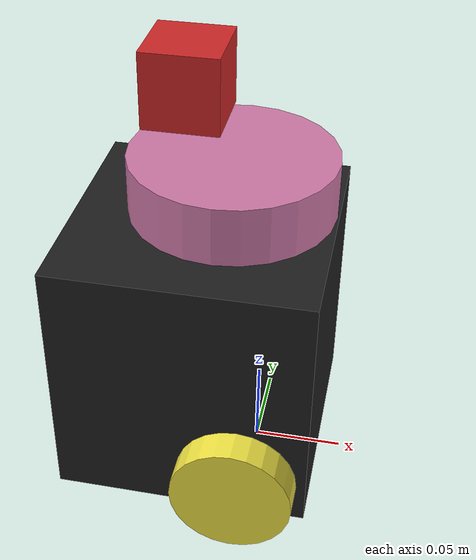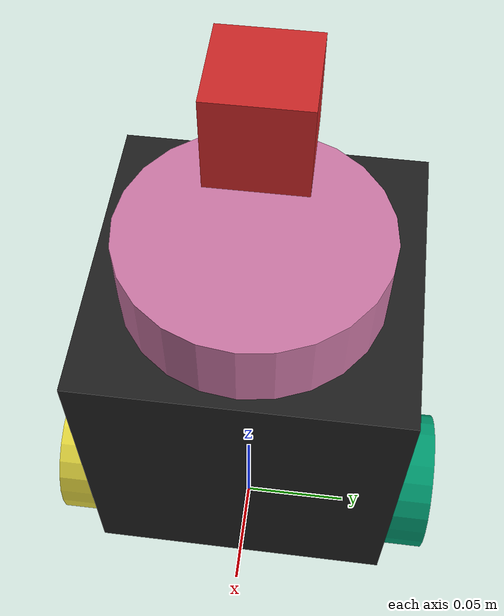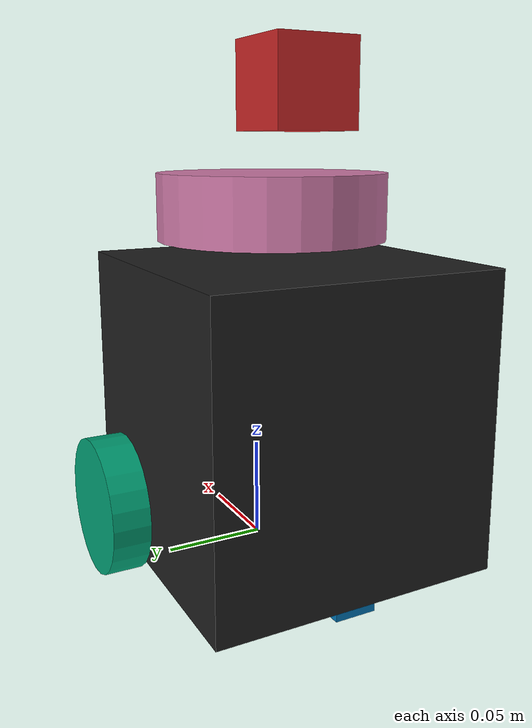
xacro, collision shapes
<?xml version="1.0" ?>
<robot name="turtlebot3_burger" xmlns:xacro="http://ros.org/wiki/xacro">
  <xacro:include filename="$(find turtlebot3_description)/urdf/common_properties.xacro"/>
  <xacro:include filename="$(find turtlebot3_description)/urdf/turtlebot3_burger.gazebo.xacro"/>

  <link name="base_footprint"/>

  <joint name="base_joint" type="fixed">
    <parent link="base_footprint"/>
    <child link="base_link"/>
    <origin xyz="0.0 0.0 0.010" rpy="0 0 0"/>
  </joint>

  <link name="base_link">
    <visual>
      <origin xyz="-0.032 0 0.0" rpy="0 0 0"/>
      <geometry>
        <mesh filename="package://turtlebot3_description/meshes/bases/burger_base.stl" scale="0.001 0.001 0.001"/>
      </geometry>
      <material name="light_black"/>
    </visual>

    <collision>
      <origin xyz="-0.032 0 0.070" rpy="0 0 0"/>
      <geometry>
        <box size="0.140 0.140 0.143"/>
      </geometry>
    </collision>

    <inertial>
      <origin xyz="0 0 0" rpy="0 0 0"/>
      <mass value="8.2573504e-01"/>
      <inertia ixx="2.2124416e-03" ixy="-1.2294101e-05" ixz="3.4938785e-05"
               iyy="2.1193702e-03" iyz="-5.0120904e-06"
               izz="2.0064271e-03" />
    </inertial>
  </link>

  <joint name="wheel_left_joint" type="continuous">
    <parent link="base_link"/>
    <child link="wheel_left_link"/>
    <origin xyz="0.0 0.08 0.023" rpy="-1.57 0 0"/>
    <axis xyz="0 0 1"/>
  </joint>

  <link name="wheel_left_link">
    <visual>
      <origin xyz="0 0 0" rpy="1.57 0 0"/>
      <geometry>
        <mesh filename="package://turtlebot3_description/meshes/wheels/left_tire.stl" scale="0.001 0.001 0.001"/>
      </geometry>
      <material name="dark"/>
    </visual>

    <collision>
      <origin xyz="0 0 0" rpy="0 0 0"/>
      <geometry>
        <cylinder length="0.018" radius="0.033"/>
      </geometry>
    </collision>

    <inertial>
      <origin xyz="0 0 0" />
      <mass value="2.8498940e-02" />
      <inertia ixx="1.1175580e-05" ixy="-4.2369783e-11" ixz="-5.9381719e-09"
               iyy="1.1192413e-05" iyz="-1.4400107e-11"
               izz="2.0712558e-05" />
      </inertial>
  </link>

  <joint name="wheel_right_joint" type="continuous">
    <parent link="base_link"/>
    <child link="wheel_right_link"/>
    <origin xyz="0.0 -0.080 0.023" rpy="-1.57 0 0"/>
    <axis xyz="0 0 1"/>
  </joint>

  <link name="wheel_right_link">
    <visual>
      <origin xyz="0 0 0" rpy="1.57 0 0"/>
      <geometry>
        <mesh filename="package://turtlebot3_description/meshes/wheels/right_tire.stl" scale="0.001 0.001 0.001"/>
      </geometry>
      <material name="dark"/>
    </visual>

    <collision>
      <origin xyz="0 0 0" rpy="0 0 0"/>
      <geometry>
        <cylinder length="0.018" radius="0.033"/>
      </geometry>
    </collision>

    <inertial>
      <origin xyz="0 0 0" />
      <mass value="2.8498940e-02" />
      <inertia ixx="1.1175580e-05" ixy="-4.2369783e-11" ixz="-5.9381719e-09"
               iyy="1.1192413e-05" iyz="-1.4400107e-11"
               izz="2.0712558e-05" />
      </inertial>
  </link>

  <joint name="caster_back_joint" type="fixed">
    <parent link="base_link"/>
    <child link="caster_back_link"/>
    <origin xyz="-0.081 0 -0.004" rpy="-1.57 0 0"/>
  </joint>

  <link name="caster_back_link">
    <collision>
      <origin xyz="0 0.001 0" rpy="0 0 0"/>
      <geometry>
        <box size="0.030 0.009 0.020"/>
      </geometry>
    </collision>

    <inertial>
      <origin xyz="0 0 0" />
      <mass value="0.005" />
      <inertia ixx="0.001" ixy="0.0" ixz="0.0"
               iyy="0.001" iyz="0.0"
               izz="0.001" />
    </inertial>
  </link>

  <joint name="imu_joint" type="fixed">
    <parent link="base_link"/>
    <child link="imu_link"/>
    <origin xyz="-0.032 0 0.068" rpy="0 0 0"/>
  </joint>

  <link name="imu_link"/>

  <joint name="scan_joint" type="fixed">
    <parent link="base_link"/>
    <child link="base_scan"/>
    <origin xyz="-0.032 0 0.172" rpy="0 0 0"/>
  </joint>

  <link name="base_scan">
    <visual>
      <origin xyz="0 0 0.0" rpy="0 0 0"/>
      <geometry>
        <mesh filename="package://turtlebot3_description/meshes/sensors/lds.stl" scale="0.001 0.001 0.001"/>
      </geometry>
      <material name="dark"/>
    </visual>

    <collision>
      <origin xyz="0.015 0 -0.0065" rpy="0 0 0"/>
      <geometry>
        <cylinder length="0.0315" radius="0.055"/>
      </geometry>
    </collision>

    <inertial>
      <mass value="0.114" />
      <origin xyz="0 0 0" />
      <inertia ixx="0.001" ixy="0.0" ixz="0.0"
               iyy="0.001" iyz="0.0"
               izz="0.001" />
    </inertial>
  </link>

   <!-- joint Chassis-Camera -->
   <joint name="camera_joint" type="fixed">
      <origin xyz="-0.04 0 0.22" rpy="0 0 0"/>
      <parent link="base_link"/>
      <child link="camera_link"/>
   </joint>

   <!-- Chassis-Camera -->
   <link name="camera_link">
      <collision>
         <origin xyz="0 0 0" rpy="0 0 0"/>
         <geometry>
            <box size="0.04 0.04 0.04"/>
         </geometry>
      </collision>
      <visual>
         <origin xyz="0 0 0" rpy="0 0 0"/>
        <geometry>
          <mesh filename="package://zedbot_description/meshes/zed_models/zed2.stl" />
        </geometry>
        <material name="red"/>
      </visual>
      <inertial>
         <mass value="1e-5" />
         <origin xyz="0 0 0" rpy="0 0 0"/>
         <inertia ixx="1e-6" ixy="0" ixz="0" iyy="1e-6" iyz="0" izz="1e-6" />
      </inertial>
   </link>
   <xacro:property name="camera_link" value="0.4" /> <!--size of 'camera' box-->

	<!-- generate an optical frame
      http://www.ros.org/reps/rep-0103.html#suffix-frames
      so that ros and opencv can operate on the camera frame correctly
      -->
  <joint name="camera_optical_joint" type="fixed">
    <!-- these values have to be these values otherwise the gazebo camera
        image won't be aligned properly with the frame it is supposedly
        originating from -->
    <origin xyz="0 0 0" rpy="-1.57 0 -1.57"/>
    <parent link="camera_link"/>
    <child link="camera_link_optical"/>
  </joint>

  <link name="camera_link_optical">
  </link>

  <!-- camera -->
  <gazebo reference="camera_link">
    <sensor name="depth_camera" type="depth">
      <update_rate>20.0</update_rate>
      <camera>
        <horizontal_fov>1.047198</horizontal_fov>
        <image>
          <width>96</width>
          <height>72</height>
          <format>R8G8B8</format>
        </image>
        <clip>
          <near>0.05</near>
          <far>5</far>
        </clip>
      </camera>
      <plugin name="depth_camera_controller" filename="libgazebo_ros_openni_kinect.so">
        <baseline>0.2</baseline>
        <alwaysOn>true</alwaysOn>
        <updateRate>2.0</updateRate>
        <cameraName>embeded_depth_camera</cameraName>

        <imageTopicName>/embeded_depth_camera/color/image_raw</imageTopicName>
        <cameraInfoTopicName>/embeded_depth_camera/color/camera_info</cameraInfoTopicName>
        <depthImageTopicName>/embeded_depth_camera/depth/image_raw</depthImageTopicName>
        <depthImageInfoTopicName>/embeded_depth_camera/depth/camera_info</depthImageInfoTopicName>

        <pointCloudTopicName>/embeded_depth_camera/depth/points</pointCloudTopicName>

        <frameName>camera_link_optical</frameName>
        <pointCloudCutoff>0.5</pointCloudCutoff>
        <pointCloudCutoffMax>3.0</pointCloudCutoffMax>
        <distortionK1>0.00000001</distortionK1>
        <distortionK2>0.00000001</distortionK2>
        <distortionK3>0.00000001</distortionK3>
        <distortionT1>0.00000001</distortionT1>
        <distortionT2>0.00000001</distortionT2>
        <CxPrime>0</CxPrime>
        <Cx>0</Cx>
        <Cy>0</Cy>
        <focalLength>0</focalLength>
        <hackBaseline>0</hackBaseline>
      </plugin>
    </sensor>
  </gazebo>
</robot>
